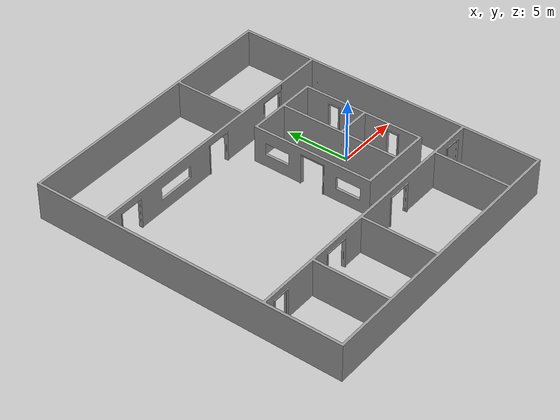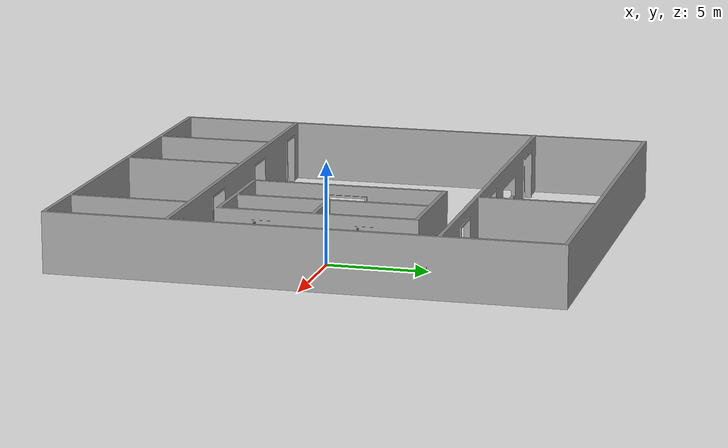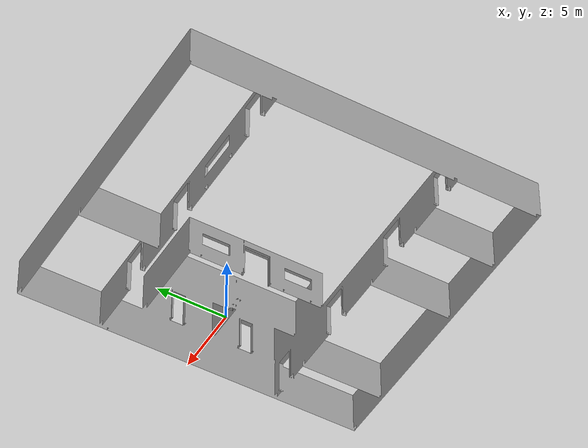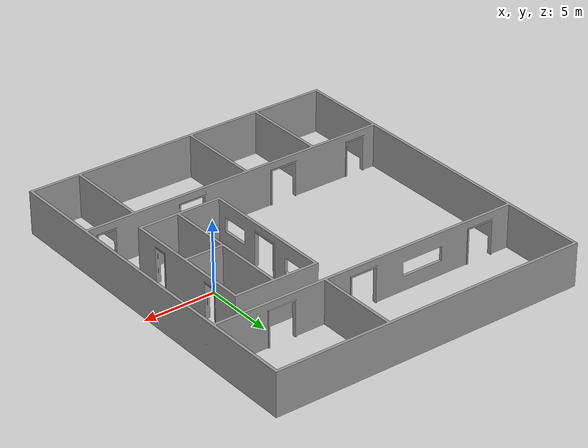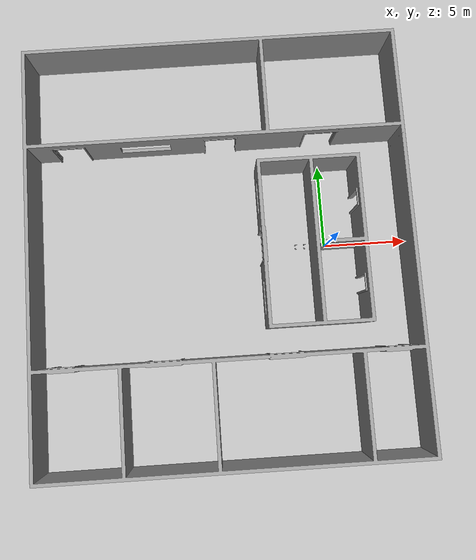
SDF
<?xml version="1.0" ?>
<sdf version="1.5">
  <model name="hospital_walls">
    <pose>0 0 0 0 0 0</pose>
    <static>true</static>
    <link name="body">
      <visual name="visual">
        <geometry>
          <mesh><uri>model://hospital_walls/media/hospital_walls.dae</uri></mesh>
        </geometry>
	      <material>
          <script>
            <uri>model://hospital_walls/media/scripts</uri>
            <uri>model://hospital_walls/media/Textures</uri>
            <name>grey_walls</name>
          </script>
        </material>
      </visual>
      <collision name="collision">
        <geometry>
          <mesh><uri>model://hospital_walls/media/hospital_walls.dae</uri></mesh>
        </geometry>
      </collision>
    </link>
  </model>
</sdf>
